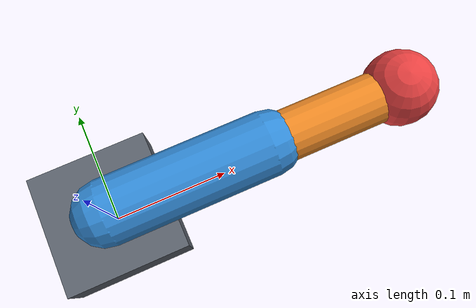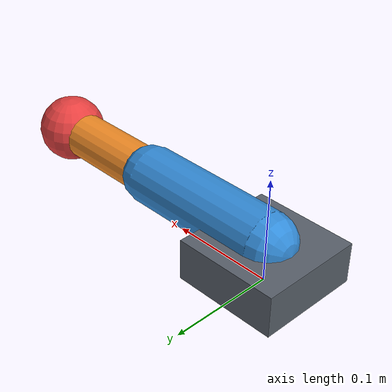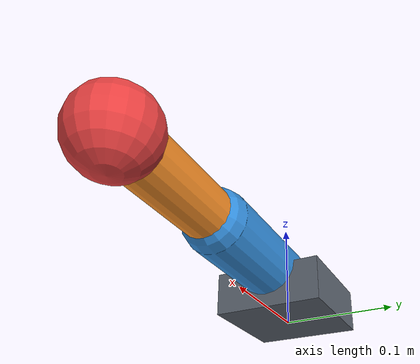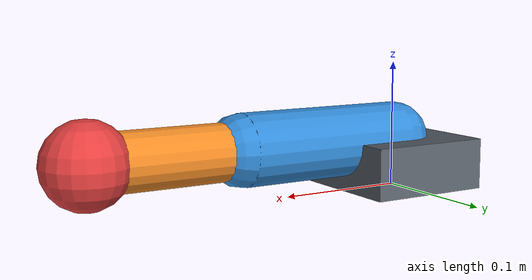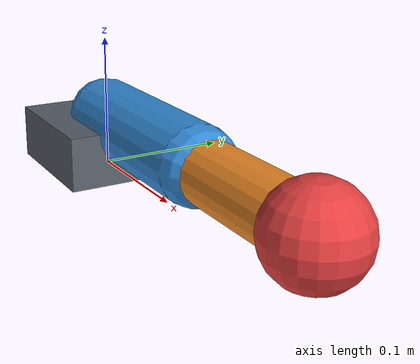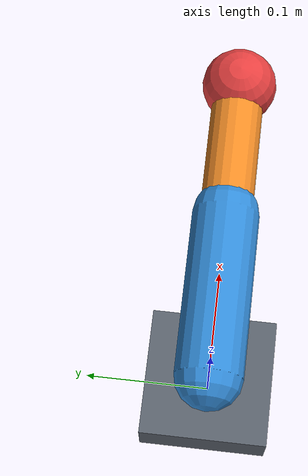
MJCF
<mujoco model="probe">
  <compiler angle="radian"/>
  <option gravity="0 0 -9.81"/>
  <visual><headlight ambient="0.55 0.55 0.55" diffuse="0.65 0.65 0.65"/></visual>
  <worldbody>
    <body name="base" pos="0 0 0.02"><geom type="box" size="0.05 0.05 0.02" rgba="0.35 0.38 0.42 1"/>
      <body name="link1" pos="0 0 0.02"><joint name="shoulder" type="hinge" axis="0 1 0" range="-1.5 1.5" damping="4"/>
        <geom type="capsule" fromto="0 0 0 0.14 0 0" size="0.028" rgba="0.20 0.55 0.85 1"/>
        <body name="link2" pos="0.14 0 0"><joint name="elbow" type="hinge" axis="0 1 0" range="-1.5 1.5" damping="4"/>
          <geom type="capsule" fromto="0 0 0 0.12 0 0" size="0.022" rgba="0.95 0.55 0.15 1"/>
          <geom name="tip" type="sphere" pos="0.12 0 0" size="0.032" rgba="0.90 0.25 0.25 1"/>
        </body></body></body></worldbody>
  <actuator><position name="a_shoulder" joint="shoulder" kp="34" ctrlrange="-1.5 1.5"/>
            <position name="a_elbow" joint="elbow" kp="26" ctrlrange="-1.5 1.5"/></actuator>
</mujoco>
